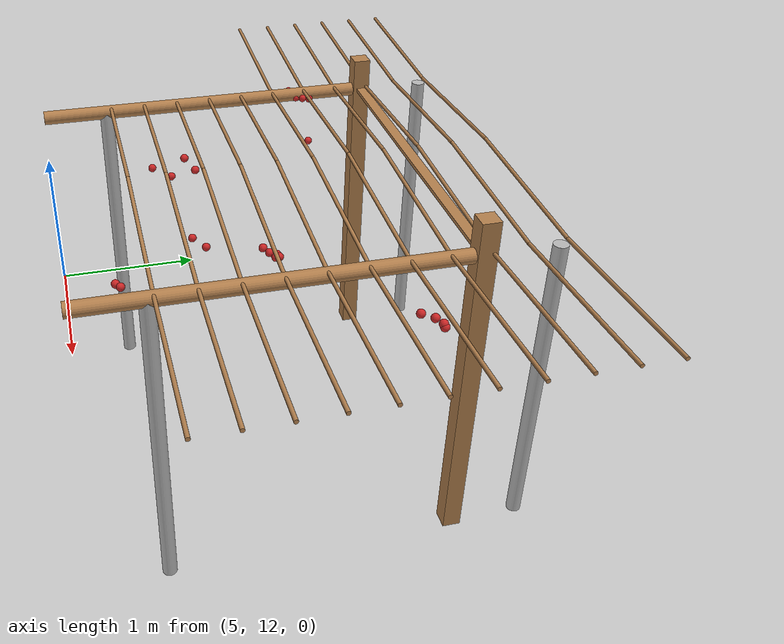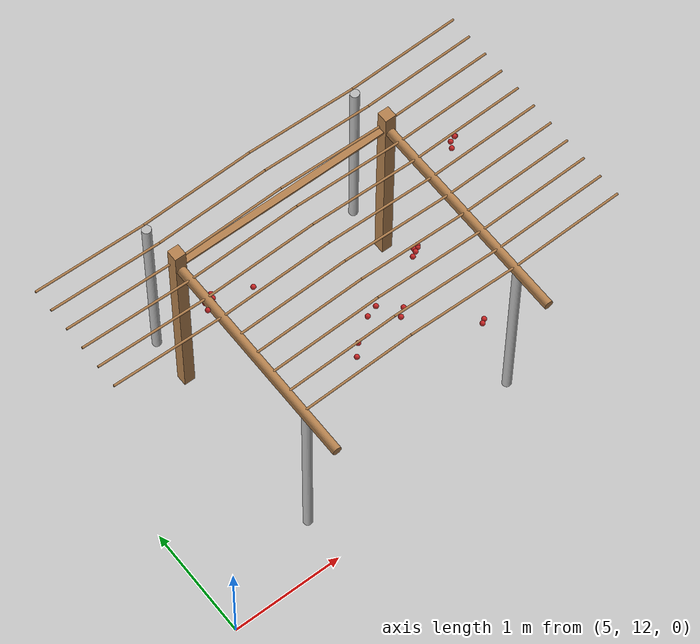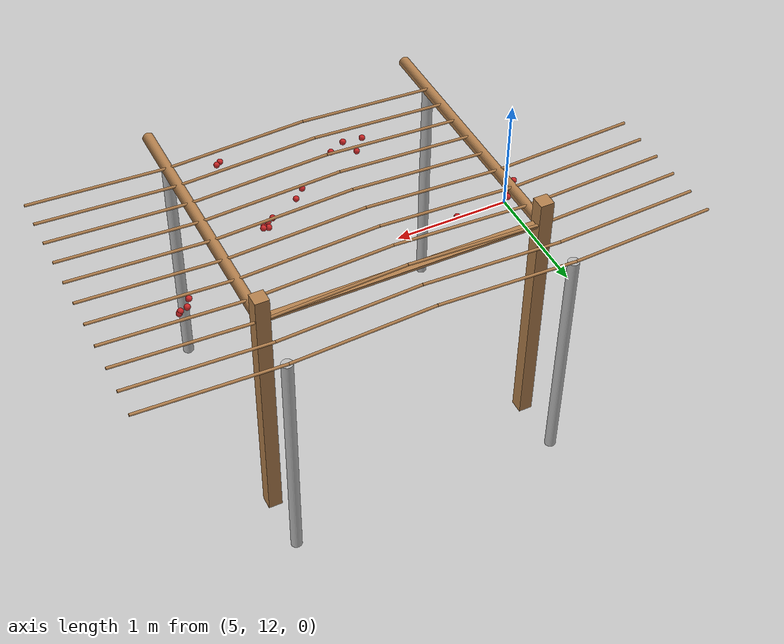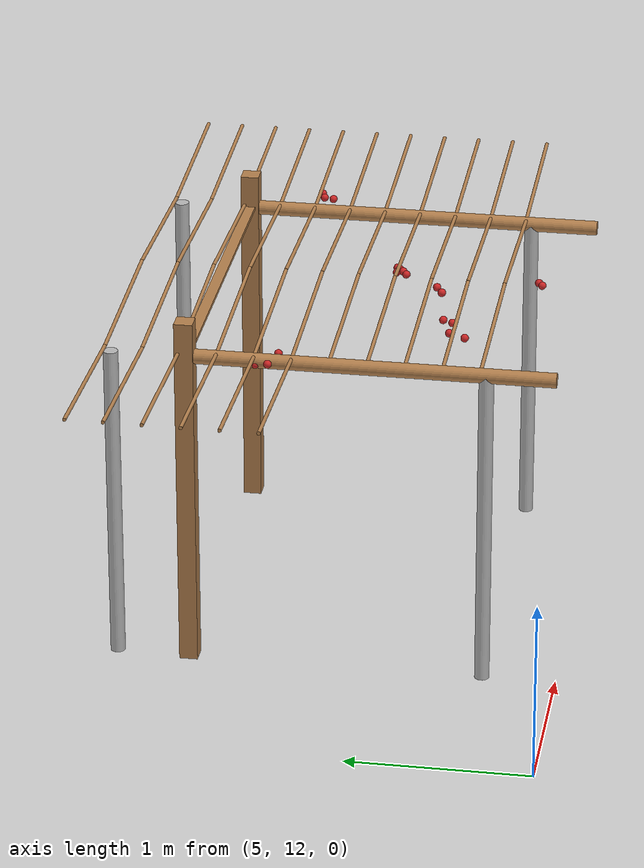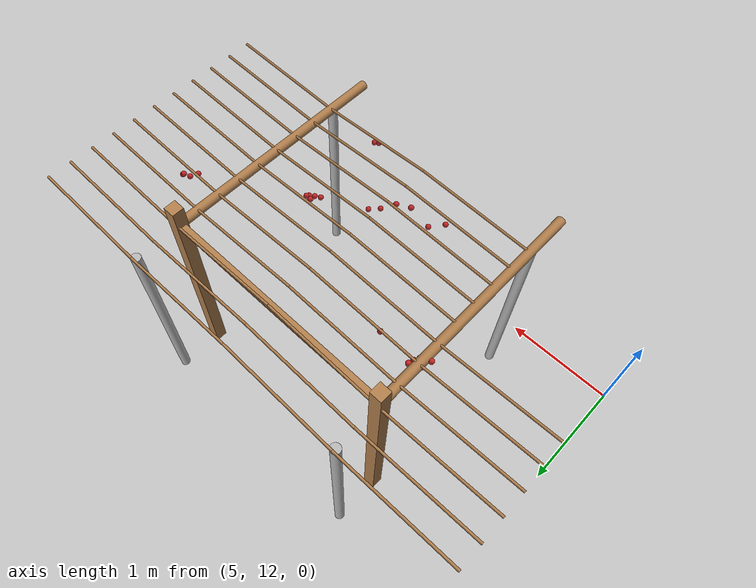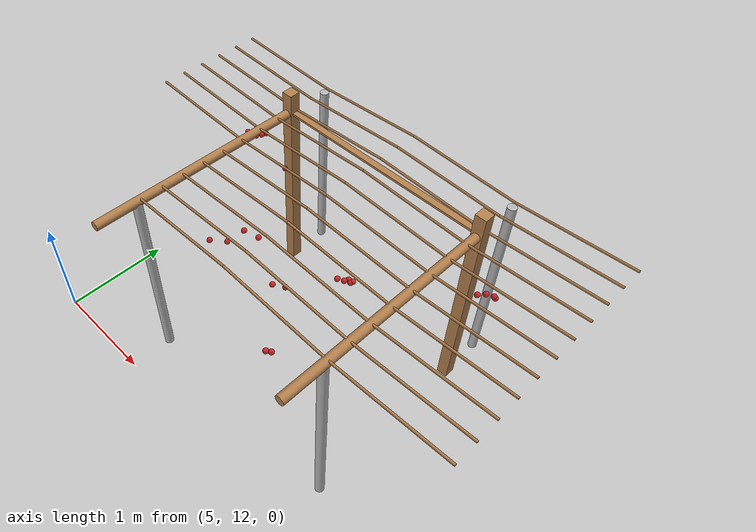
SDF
<sdf version="1.4">
 <model name="pergola">
  <include><name>post_40</name><pose>6.0 14.0 0 0 0 0</pose><uri>model://post</uri></include>
  <include><name>post_51</name><pose>8.0 14.0 0 0 0 0</pose><uri>model://post</uri></include>
  <link name="beam_40">
   <pose>7.0 14.0 1.81 0 0 0</pose>
   <collision name="collision"><geometry><box><size>2.0 0.06 0.02</size></box></geometry></collision>
   <visual name="visual">
    <geometry><box><size>2.0 0.06 0.02</size></box></geometry>
    <material><script><name>Gazebo/Wood</name></script></material>
   </visual>
   <inertial>
    <mass>5</mass>
    <inertia>
     <ixx>0.0016666666666666668</ixx>
     <ixy>0.0</ixy>
     <ixz>0.0</ixz>
     <iyy>1.6681666666666664</iyy>
     <iyz>0.0</iyz>
     <izz>1.6668333333333332</izz>
    </inertia>
   </inertial>
  </link>
  <include><name>tree_36</name><pose>6.0 12.4 0 0 0 0</pose><uri>model://tree_trunk</uri></include>
  <include><name>tree_37</name><pose>6.0 14.4 0 0 0 0</pose><uri>model://tree_trunk</uri></include>
  <include><name>tree_46</name><pose>8.0 12.4 0 0 0 0</pose><uri>model://tree_trunk</uri></include>
  <include><name>tree_47</name><pose>8.0 14.4 0 0 0 0</pose><uri>model://tree_trunk</uri></include>
  <link name="baseBranch_36">
   <pose>6.0 13.0 1.8 1.5707963267948966 0 0</pose>
   <collision name="collision">
    <geometry><cylinder><radius>0.04</radius><length>1.94</length></cylinder></geometry>
   </collision>
   <visual name="visual">
    <geometry><cylinder><radius>0.04</radius><length>1.94</length></cylinder></geometry>
    <material><script><name>Gazebo/WoodFloor</name></script></material>
   </visual>
   <inertial>
    <mass>10</mass>
    <inertia>
     <ixx>3.140333333333333</ixx>
     <ixy>0.0</ixy>
     <ixz>0.0</ixz>
     <iyy>3.140333333333333</iyy>
     <iyz>0.0</iyz>
     <izz>0.008</izz>
    </inertia>
   </inertial>
  </link>
  <link name="baseBranch_46">
   <pose>8.0 13.0 1.8 1.5707963267948966 0 0</pose>
   <collision name="collision">
    <geometry><cylinder><radius>0.04</radius><length>1.94</length></cylinder></geometry>
   </collision>
   <visual name="visual">
    <geometry><cylinder><radius>0.04</radius><length>1.94</length></cylinder></geometry>
    <material><script><name>Gazebo/WoodFloor</name></script></material>
   </visual>
   <inertial>
    <mass>10</mass>
    <inertia>
     <ixx>3.140333333333333</ixx>
     <ixy>0.0</ixy>
     <ixz>0.0</ixz>
     <iyy>3.140333333333333</iyy>
     <iyz>0.0</iyz>
     <izz>0.008</izz>
    </inertia>
   </inertial>
  </link>
  <link name="vine_535">
   <pose>5.5 13.43 1.85 0 -1.5208379310729538 0</pose>
   <collision name="collision">
    <geometry><cylinder><radius>0.01</radius><length>1.0012492197250393</length></cylinder></geometry>
   </collision>
   <visual name="visual">
    <geometry><cylinder><radius>0.01</radius><length>1.0012492197250393</length></cylinder></geometry>
    <material><script><name>Gazebo/WoodFloor</name></script></material>
   </visual>
   <inertial>
    <mass>5</mass>
    <inertia>
     <ixx>0.41783333333333345</ixx>
     <ixy>0.0</ixy>
     <ixz>0.0</ixz>
     <iyy>0.41783333333333345</iyy>
     <iyz>0.0</iyz>
     <izz>0.00025</izz>
    </inertia>
   </inertial>
  </link>
  <link name="vine_537">
   <pose>5.5 13.63 1.85 0 -1.5208379310729538 0</pose>
   <collision name="collision">
    <geometry><cylinder><radius>0.01</radius><length>1.0012492197250393</length></cylinder></geometry>
   </collision>
   <visual name="visual">
    <geometry><cylinder><radius>0.01</radius><length>1.0012492197250393</length></cylinder></geometry>
    <material><script><name>Gazebo/WoodFloor</name></script></material>
   </visual>
   <inertial>
    <mass>5</mass>
    <inertia>
     <ixx>0.41783333333333345</ixx>
     <ixy>0.0</ixy>
     <ixz>0.0</ixz>
     <iyy>0.41783333333333345</iyy>
     <iyz>0.0</iyz>
     <izz>0.00025</izz>
    </inertia>
   </inertial>
  </link>
  <link name="vine_539">
   <pose>5.5 13.83 1.85 0 -1.5208379310729538 0</pose>
   <collision name="collision">
    <geometry><cylinder><radius>0.01</radius><length>1.0012492197250393</length></cylinder></geometry>
   </collision>
   <visual name="visual">
    <geometry><cylinder><radius>0.01</radius><length>1.0012492197250393</length></cylinder></geometry>
    <material><script><name>Gazebo/WoodFloor</name></script></material>
   </visual>
   <inertial>
    <mass>5</mass>
    <inertia>
     <ixx>0.41783333333333345</ixx>
     <ixy>0.0</ixy>
     <ixz>0.0</ixz>
     <iyy>0.41783333333333345</iyy>
     <iyz>0.0</iyz>
     <izz>0.00025</izz>
    </inertia>
   </inertial>
  </link>
  <link name="vine_541">
   <pose>5.5 14.03 1.85 0 -1.5208379310729538 0</pose>
   <collision name="collision">
    <geometry><cylinder><radius>0.01</radius><length>1.0012492197250393</length></cylinder></geometry>
   </collision>
   <visual name="visual">
    <geometry><cylinder><radius>0.01</radius><length>1.0012492197250393</length></cylinder></geometry>
    <material><script><name>Gazebo/WoodFloor</name></script></material>
   </visual>
   <inertial>
    <mass>5</mass>
    <inertia>
     <ixx>0.41783333333333345</ixx>
     <ixy>0.0</ixy>
     <ixz>0.0</ixz>
     <iyy>0.41783333333333345</iyy>
     <iyz>0.0</iyz>
     <izz>0.00025</izz>
    </inertia>
   </inertial>
  </link>
  <link name="vine_543">
   <pose>5.5 14.23 1.85 0 -1.5208379310729538 0</pose>
   <collision name="collision">
    <geometry><cylinder><radius>0.01</radius><length>1.0012492197250393</length></cylinder></geometry>
   </collision>
   <visual name="visual">
    <geometry><cylinder><radius>0.01</radius><length>1.0012492197250393</length></cylinder></geometry>
    <material><script><name>Gazebo/WoodFloor</name></script></material>
   </visual>
   <inertial>
    <mass>5</mass>
    <inertia>
     <ixx>0.41783333333333345</ixx>
     <ixy>0.0</ixy>
     <ixz>0.0</ixz>
     <iyy>0.41783333333333345</iyy>
     <iyz>0.0</iyz>
     <izz>0.00025</izz>
    </inertia>
   </inertial>
  </link>
  <link name="vine_545">
   <pose>5.5 14.43 1.85 0 -1.5208379310729538 0</pose>
   <collision name="collision">
    <geometry><cylinder><radius>0.01</radius><length>1.0012492197250393</length></cylinder></geometry>
   </collision>
   <visual name="visual">
    <geometry><cylinder><radius>0.01</radius><length>1.0012492197250393</length></cylinder></geometry>
    <material><script><name>Gazebo/WoodFloor</name></script></material>
   </visual>
   <inertial>
    <mass>5</mass>
    <inertia>
     <ixx>0.41783333333333345</ixx>
     <ixy>0.0</ixy>
     <ixz>0.0</ixz>
     <iyy>0.41783333333333345</iyy>
     <iyz>0.0</iyz>
     <izz>0.00025</izz>
    </inertia>
   </inertial>
  </link>
  <link name="vine_724">
   <pose>6.5 12.43 1.85 0 1.5208379310729538 0</pose>
   <collision name="collision">
    <geometry><cylinder><radius>0.01</radius><length>1.0012492197250393</length></cylinder></geometry>
   </collision>
   <visual name="visual">
    <geometry><cylinder><radius>0.01</radius><length>1.0012492197250393</length></cylinder></geometry>
    <material><script><name>Gazebo/WoodFloor</name></script></material>
   </visual>
   <inertial>
    <mass>5</mass>
    <inertia>
     <ixx>0.41783333333333345</ixx>
     <ixy>0.0</ixy>
     <ixz>0.0</ixz>
     <iyy>0.41783333333333345</iyy>
     <iyz>0.0</iyz>
     <izz>0.00025</izz>
    </inertia>
   </inertial>
  </link>
  <link name="vine_725">
   <pose>7.5 12.43 1.85 0 -1.5208379310729538 0</pose>
   <collision name="collision">
    <geometry><cylinder><radius>0.01</radius><length>1.0012492197250393</length></cylinder></geometry>
   </collision>
   <visual name="visual">
    <geometry><cylinder><radius>0.01</radius><length>1.0012492197250393</length></cylinder></geometry>
    <material><script><name>Gazebo/WoodFloor</name></script></material>
   </visual>
   <inertial>
    <mass>5</mass>
    <inertia>
     <ixx>0.41783333333333345</ixx>
     <ixy>0.0</ixy>
     <ixz>0.0</ixz>
     <iyy>0.41783333333333345</iyy>
     <iyz>0.0</iyz>
     <izz>0.00025</izz>
    </inertia>
   </inertial>
  </link>
  <link name="vine_726">
   <pose>6.5 12.63 1.85 0 1.5208379310729538 0</pose>
   <collision name="collision">
    <geometry><cylinder><radius>0.01</radius><length>1.0012492197250393</length></cylinder></geometry>
   </collision>
   <visual name="visual">
    <geometry><cylinder><radius>0.01</radius><length>1.0012492197250393</length></cylinder></geometry>
    <material><script><name>Gazebo/WoodFloor</name></script></material>
   </visual>
   <inertial>
    <mass>5</mass>
    <inertia>
     <ixx>0.41783333333333345</ixx>
     <ixy>0.0</ixy>
     <ixz>0.0</ixz>
     <iyy>0.41783333333333345</iyy>
     <iyz>0.0</iyz>
     <izz>0.00025</izz>
    </inertia>
   </inertial>
  </link>
  <link name="vine_727">
   <pose>7.5 12.63 1.85 0 -1.5208379310729538 0</pose>
   <collision name="collision">
    <geometry><cylinder><radius>0.01</radius><length>1.0012492197250393</length></cylinder></geometry>
   </collision>
   <visual name="visual">
    <geometry><cylinder><radius>0.01</radius><length>1.0012492197250393</length></cylinder></geometry>
    <material><script><name>Gazebo/WoodFloor</name></script></material>
   </visual>
   <inertial>
    <mass>5</mass>
    <inertia>
     <ixx>0.41783333333333345</ixx>
     <ixy>0.0</ixy>
     <ixz>0.0</ixz>
     <iyy>0.41783333333333345</iyy>
     <iyz>0.0</iyz>
     <izz>0.00025</izz>
    </inertia>
   </inertial>
  </link>
  <link name="vine_728">
   <pose>6.5 12.83 1.85 0 1.5208379310729538 0</pose>
   <collision name="collision">
    <geometry><cylinder><radius>0.01</radius><length>1.0012492197250393</length></cylinder></geometry>
   </collision>
   <visual name="visual">
    <geometry><cylinder><radius>0.01</radius><length>1.0012492197250393</length></cylinder></geometry>
    <material><script><name>Gazebo/WoodFloor</name></script></material>
   </visual>
   <inertial>
    <mass>5</mass>
    <inertia>
     <ixx>0.41783333333333345</ixx>
     <ixy>0.0</ixy>
     <ixz>0.0</ixz>
     <iyy>0.41783333333333345</iyy>
     <iyz>0.0</iyz>
     <izz>0.00025</izz>
    </inertia>
   </inertial>
  </link>
  <link name="vine_729">
   <pose>7.5 12.83 1.85 0 -1.5208379310729538 0</pose>
   <collision name="collision">
    <geometry><cylinder><radius>0.01</radius><length>1.0012492197250393</length></cylinder></geometry>
   </collision>
   <visual name="visual">
    <geometry><cylinder><radius>0.01</radius><length>1.0012492197250393</length></cylinder></geometry>
    <material><script><name>Gazebo/WoodFloor</name></script></material>
   </visual>
   <inertial>
    <mass>5</mass>
    <inertia>
     <ixx>0.41783333333333345</ixx>
     <ixy>0.0</ixy>
     <ixz>0.0</ixz>
     <iyy>0.41783333333333345</iyy>
     <iyz>0.0</iyz>
     <izz>0.00025</izz>
    </inertia>
   </inertial>
  </link>
  <link name="vine_730">
   <pose>6.5 13.03 1.85 0 1.5208379310729538 0</pose>
   <collision name="collision">
    <geometry><cylinder><radius>0.01</radius><length>1.0012492197250393</length></cylinder></geometry>
   </collision>
   <visual name="visual">
    <geometry><cylinder><radius>0.01</radius><length>1.0012492197250393</length></cylinder></geometry>
    <material><script><name>Gazebo/WoodFloor</name></script></material>
   </visual>
   <inertial>
    <mass>5</mass>
    <inertia>
     <ixx>0.41783333333333345</ixx>
     <ixy>0.0</ixy>
     <ixz>0.0</ixz>
     <iyy>0.41783333333333345</iyy>
     <iyz>0.0</iyz>
     <izz>0.00025</izz>
    </inertia>
   </inertial>
  </link>
  <link name="vine_731">
   <pose>7.5 13.03 1.85 0 -1.5208379310729538 0</pose>
   <collision name="collision">
    <geometry><cylinder><radius>0.01</radius><length>1.0012492197250393</length></cylinder></geometry>
   </collision>
   <visual name="visual">
    <geometry><cylinder><radius>0.01</radius><length>1.0012492197250393</length></cylinder></geometry>
    <material><script><name>Gazebo/WoodFloor</name></script></material>
   </visual>
   <inertial>
    <mass>5</mass>
    <inertia>
     <ixx>0.41783333333333345</ixx>
     <ixy>0.0</ixy>
     <ixz>0.0</ixz>
     <iyy>0.41783333333333345</iyy>
     <iyz>0.0</iyz>
     <izz>0.00025</izz>
    </inertia>
   </inertial>
  </link>
  <link name="vine_732">
   <pose>6.5 13.23 1.85 0 1.5208379310729538 0</pose>
   <collision name="collision">
    <geometry><cylinder><radius>0.01</radius><length>1.0012492197250393</length></cylinder></geometry>
   </collision>
   <visual name="visual">
    <geometry><cylinder><radius>0.01</radius><length>1.0012492197250393</length></cylinder></geometry>
    <material><script><name>Gazebo/WoodFloor</name></script></material>
   </visual>
   <inertial>
    <mass>5</mass>
    <inertia>
     <ixx>0.41783333333333345</ixx>
     <ixy>0.0</ixy>
     <ixz>0.0</ixz>
     <iyy>0.41783333333333345</iyy>
     <iyz>0.0</iyz>
     <izz>0.00025</izz>
    </inertia>
   </inertial>
  </link>
  <link name="vine_733">
   <pose>7.5 13.23 1.85 0 -1.5208379310729538 0</pose>
   <collision name="collision">
    <geometry><cylinder><radius>0.01</radius><length>1.0012492197250393</length></cylinder></geometry>
   </collision>
   <visual name="visual">
    <geometry><cylinder><radius>0.01</radius><length>1.0012492197250393</length></cylinder></geometry>
    <material><script><name>Gazebo/WoodFloor</name></script></material>
   </visual>
   <inertial>
    <mass>5</mass>
    <inertia>
     <ixx>0.41783333333333345</ixx>
     <ixy>0.0</ixy>
     <ixz>0.0</ixz>
     <iyy>0.41783333333333345</iyy>
     <iyz>0.0</iyz>
     <izz>0.00025</izz>
    </inertia>
   </inertial>
  </link>
  <link name="vine_734">
   <pose>6.5 13.43 1.85 0 1.5208379310729538 0</pose>
   <collision name="collision">
    <geometry><cylinder><radius>0.01</radius><length>1.0012492197250393</length></cylinder></geometry>
   </collision>
   <visual name="visual">
    <geometry><cylinder><radius>0.01</radius><length>1.0012492197250393</length></cylinder></geometry>
    <material><script><name>Gazebo/WoodFloor</name></script></material>
   </visual>
   <inertial>
    <mass>5</mass>
    <inertia>
     <ixx>0.41783333333333345</ixx>
     <ixy>0.0</ixy>
     <ixz>0.0</ixz>
     <iyy>0.41783333333333345</iyy>
     <iyz>0.0</iyz>
     <izz>0.00025</izz>
    </inertia>
   </inertial>
  </link>
  <link name="vine_735">
   <pose>7.5 13.43 1.85 0 -1.5208379310729538 0</pose>
   <collision name="collision">
    <geometry><cylinder><radius>0.01</radius><length>1.0012492197250393</length></cylinder></geometry>
   </collision>
   <visual name="visual">
    <geometry><cylinder><radius>0.01</radius><length>1.0012492197250393</length></cylinder></geometry>
    <material><script><name>Gazebo/WoodFloor</name></script></material>
   </visual>
   <inertial>
    <mass>5</mass>
    <inertia>
     <ixx>0.41783333333333345</ixx>
     <ixy>0.0</ixy>
     <ixz>0.0</ixz>
     <iyy>0.41783333333333345</iyy>
     <iyz>0.0</iyz>
     <izz>0.00025</izz>
    </inertia>
   </inertial>
  </link>
  <link name="vine_736">
   <pose>6.5 13.63 1.85 0 1.5208379310729538 0</pose>
   <collision name="collision">
    <geometry><cylinder><radius>0.01</radius><length>1.0012492197250393</length></cylinder></geometry>
   </collision>
   <visual name="visual">
    <geometry><cylinder><radius>0.01</radius><length>1.0012492197250393</length></cylinder></geometry>
    <material><script><name>Gazebo/WoodFloor</name></script></material>
   </visual>
   <inertial>
    <mass>5</mass>
    <inertia>
     <ixx>0.41783333333333345</ixx>
     <ixy>0.0</ixy>
     <ixz>0.0</ixz>
     <iyy>0.41783333333333345</iyy>
     <iyz>0.0</iyz>
     <izz>0.00025</izz>
    </inertia>
   </inertial>
  </link>
  <link name="vine_737">
   <pose>7.5 13.63 1.85 0 -1.5208379310729538 0</pose>
   <collision name="collision">
    <geometry><cylinder><radius>0.01</radius><length>1.0012492197250393</length></cylinder></geometry>
   </collision>
   <visual name="visual">
    <geometry><cylinder><radius>0.01</radius><length>1.0012492197250393</length></cylinder></geometry>
    <material><script><name>Gazebo/WoodFloor</name></script></material>
   </visual>
   <inertial>
    <mass>5</mass>
    <inertia>
     <ixx>0.41783333333333345</ixx>
     <ixy>0.0</ixy>
     <ixz>0.0</ixz>
     <iyy>0.41783333333333345</iyy>
     <iyz>0.0</iyz>
     <izz>0.00025</izz>
    </inertia>
   </inertial>
  </link>
  <link name="vine_738">
   <pose>6.5 13.83 1.85 0 1.5208379310729538 0</pose>
   <collision name="collision">
    <geometry><cylinder><radius>0.01</radius><length>1.0012492197250393</length></cylinder></geometry>
   </collision>
   <visual name="visual">
    <geometry><cylinder><radius>0.01</radius><length>1.0012492197250393</length></cylinder></geometry>
    <material><script><name>Gazebo/WoodFloor</name></script></material>
   </visual>
   <inertial>
    <mass>5</mass>
    <inertia>
     <ixx>0.41783333333333345</ixx>
     <ixy>0.0</ixy>
     <ixz>0.0</ixz>
     <iyy>0.41783333333333345</iyy>
     <iyz>0.0</iyz>
     <izz>0.00025</izz>
    </inertia>
   </inertial>
  </link>
  <link name="vine_739">
   <pose>7.5 13.83 1.85 0 -1.5208379310729538 0</pose>
   <collision name="collision">
    <geometry><cylinder><radius>0.01</radius><length>1.0012492197250393</length></cylinder></geometry>
   </collision>
   <visual name="visual">
    <geometry><cylinder><radius>0.01</radius><length>1.0012492197250393</length></cylinder></geometry>
    <material><script><name>Gazebo/WoodFloor</name></script></material>
   </visual>
   <inertial>
    <mass>5</mass>
    <inertia>
     <ixx>0.41783333333333345</ixx>
     <ixy>0.0</ixy>
     <ixz>0.0</ixz>
     <iyy>0.41783333333333345</iyy>
     <iyz>0.0</iyz>
     <izz>0.00025</izz>
    </inertia>
   </inertial>
  </link>
  <link name="vine_740">
   <pose>6.5 14.03 1.85 0 1.5208379310729538 0</pose>
   <collision name="collision">
    <geometry><cylinder><radius>0.01</radius><length>1.0012492197250393</length></cylinder></geometry>
   </collision>
   <visual name="visual">
    <geometry><cylinder><radius>0.01</radius><length>1.0012492197250393</length></cylinder></geometry>
    <material><script><name>Gazebo/WoodFloor</name></script></material>
   </visual>
   <inertial>
    <mass>5</mass>
    <inertia>
     <ixx>0.41783333333333345</ixx>
     <ixy>0.0</ixy>
     <ixz>0.0</ixz>
     <iyy>0.41783333333333345</iyy>
     <iyz>0.0</iyz>
     <izz>0.00025</izz>
    </inertia>
   </inertial>
  </link>
  <link name="vine_741">
   <pose>7.5 14.03 1.85 0 -1.5208379310729538 0</pose>
   <collision name="collision">
    <geometry><cylinder><radius>0.01</radius><length>1.0012492197250393</length></cylinder></geometry>
   </collision>
   <visual name="visual">
    <geometry><cylinder><radius>0.01</radius><length>1.0012492197250393</length></cylinder></geometry>
    <material><script><name>Gazebo/WoodFloor</name></script></material>
   </visual>
   <inertial>
    <mass>5</mass>
    <inertia>
     <ixx>0.41783333333333345</ixx>
     <ixy>0.0</ixy>
     <ixz>0.0</ixz>
     <iyy>0.41783333333333345</iyy>
     <iyz>0.0</iyz>
     <izz>0.00025</izz>
    </inertia>
   </inertial>
  </link>
  <link name="vine_742">
   <pose>6.5 14.23 1.85 0 1.5208379310729538 0</pose>
   <collision name="collision">
    <geometry><cylinder><radius>0.01</radius><length>1.0012492197250393</length></cylinder></geometry>
   </collision>
   <visual name="visual">
    <geometry><cylinder><radius>0.01</radius><length>1.0012492197250393</length></cylinder></geometry>
    <material><script><name>Gazebo/WoodFloor</name></script></material>
   </visual>
   <inertial>
    <mass>5</mass>
    <inertia>
     <ixx>0.41783333333333345</ixx>
     <ixy>0.0</ixy>
     <ixz>0.0</ixz>
     <iyy>0.41783333333333345</iyy>
     <iyz>0.0</iyz>
     <izz>0.00025</izz>
    </inertia>
   </inertial>
  </link>
  <link name="vine_743">
   <pose>7.5 14.23 1.85 0 -1.5208379310729538 0</pose>
   <collision name="collision">
    <geometry><cylinder><radius>0.01</radius><length>1.0012492197250393</length></cylinder></geometry>
   </collision>
   <visual name="visual">
    <geometry><cylinder><radius>0.01</radius><length>1.0012492197250393</length></cylinder></geometry>
    <material><script><name>Gazebo/WoodFloor</name></script></material>
   </visual>
   <inertial>
    <mass>5</mass>
    <inertia>
     <ixx>0.41783333333333345</ixx>
     <ixy>0.0</ixy>
     <ixz>0.0</ixz>
     <iyy>0.41783333333333345</iyy>
     <iyz>0.0</iyz>
     <izz>0.00025</izz>
    </inertia>
   </inertial>
  </link>
  <link name="vine_744">
   <pose>6.5 14.43 1.85 0 1.5208379310729538 0</pose>
   <collision name="collision">
    <geometry><cylinder><radius>0.01</radius><length>1.0012492197250393</length></cylinder></geometry>
   </collision>
   <visual name="visual">
    <geometry><cylinder><radius>0.01</radius><length>1.0012492197250393</length></cylinder></geometry>
    <material><script><name>Gazebo/WoodFloor</name></script></material>
   </visual>
   <inertial>
    <mass>5</mass>
    <inertia>
     <ixx>0.41783333333333345</ixx>
     <ixy>0.0</ixy>
     <ixz>0.0</ixz>
     <iyy>0.41783333333333345</iyy>
     <iyz>0.0</iyz>
     <izz>0.00025</izz>
    </inertia>
   </inertial>
  </link>
  <link name="vine_745">
   <pose>7.5 14.43 1.85 0 -1.5208379310729538 0</pose>
   <collision name="collision">
    <geometry><cylinder><radius>0.01</radius><length>1.0012492197250393</length></cylinder></geometry>
   </collision>
   <visual name="visual">
    <geometry><cylinder><radius>0.01</radius><length>1.0012492197250393</length></cylinder></geometry>
    <material><script><name>Gazebo/WoodFloor</name></script></material>
   </visual>
   <inertial>
    <mass>5</mass>
    <inertia>
     <ixx>0.41783333333333345</ixx>
     <ixy>0.0</ixy>
     <ixz>0.0</ixz>
     <iyy>0.41783333333333345</iyy>
     <iyz>0.0</iyz>
     <izz>0.00025</izz>
    </inertia>
   </inertial>
  </link>
  <link name="vine_924">
   <pose>8.5 12.43 1.85 0 1.5208379310729538 0</pose>
   <collision name="collision">
    <geometry><cylinder><radius>0.01</radius><length>1.0012492197250393</length></cylinder></geometry>
   </collision>
   <visual name="visual">
    <geometry><cylinder><radius>0.01</radius><length>1.0012492197250393</length></cylinder></geometry>
    <material><script><name>Gazebo/WoodFloor</name></script></material>
   </visual>
   <inertial>
    <mass>5</mass>
    <inertia>
     <ixx>0.41783333333333345</ixx>
     <ixy>0.0</ixy>
     <ixz>0.0</ixz>
     <iyy>0.41783333333333345</iyy>
     <iyz>0.0</iyz>
     <izz>0.00025</izz>
    </inertia>
   </inertial>
  </link>
  <link name="vine_926">
   <pose>8.5 12.63 1.85 0 1.5208379310729538 0</pose>
   <collision name="collision">
    <geometry><cylinder><radius>0.01</radius><length>1.0012492197250393</length></cylinder></geometry>
   </collision>
   <visual name="visual">
    <geometry><cylinder><radius>0.01</radius><length>1.0012492197250393</length></cylinder></geometry>
    <material><script><name>Gazebo/WoodFloor</name></script></material>
   </visual>
   <inertial>
    <mass>5</mass>
    <inertia>
     <ixx>0.41783333333333345</ixx>
     <ixy>0.0</ixy>
     <ixz>0.0</ixz>
     <iyy>0.41783333333333345</iyy>
     <iyz>0.0</iyz>
     <izz>0.00025</izz>
    </inertia>
   </inertial>
  </link>
  <link name="vine_928">
   <pose>8.5 12.83 1.85 0 1.5208379310729538 0</pose>
   <collision name="collision">
    <geometry><cylinder><radius>0.01</radius><length>1.0012492197250393</length></cylinder></geometry>
   </collision>
   <visual name="visual">
    <geometry><cylinder><radius>0.01</radius><length>1.0012492197250393</length></cylinder></geometry>
    <material><script><name>Gazebo/WoodFloor</name></script></material>
   </visual>
   <inertial>
    <mass>5</mass>
    <inertia>
     <ixx>0.41783333333333345</ixx>
     <ixy>0.0</ixy>
     <ixz>0.0</ixz>
     <iyy>0.41783333333333345</iyy>
     <iyz>0.0</iyz>
     <izz>0.00025</izz>
    </inertia>
   </inertial>
  </link>
  <link name="vine_930">
   <pose>8.5 13.03 1.85 0 1.5208379310729538 0</pose>
   <collision name="collision">
    <geometry><cylinder><radius>0.01</radius><length>1.0012492197250393</length></cylinder></geometry>
   </collision>
   <visual name="visual">
    <geometry><cylinder><radius>0.01</radius><length>1.0012492197250393</length></cylinder></geometry>
    <material><script><name>Gazebo/WoodFloor</name></script></material>
   </visual>
   <inertial>
    <mass>5</mass>
    <inertia>
     <ixx>0.41783333333333345</ixx>
     <ixy>0.0</ixy>
     <ixz>0.0</ixz>
     <iyy>0.41783333333333345</iyy>
     <iyz>0.0</iyz>
     <izz>0.00025</izz>
    </inertia>
   </inertial>
  </link>
  <link name="vine_932">
   <pose>8.5 13.23 1.85 0 1.5208379310729538 0</pose>
   <collision name="collision">
    <geometry><cylinder><radius>0.01</radius><length>1.0012492197250393</length></cylinder></geometry>
   </collision>
   <visual name="visual">
    <geometry><cylinder><radius>0.01</radius><length>1.0012492197250393</length></cylinder></geometry>
    <material><script><name>Gazebo/WoodFloor</name></script></material>
   </visual>
   <inertial>
    <mass>5</mass>
    <inertia>
     <ixx>0.41783333333333345</ixx>
     <ixy>0.0</ixy>
     <ixz>0.0</ixz>
     <iyy>0.41783333333333345</iyy>
     <iyz>0.0</iyz>
     <izz>0.00025</izz>
    </inertia>
   </inertial>
  </link>
  <link name="vine_934">
   <pose>8.5 13.43 1.85 0 1.5208379310729538 0</pose>
   <collision name="collision">
    <geometry><cylinder><radius>0.01</radius><length>1.0012492197250393</length></cylinder></geometry>
   </collision>
   <visual name="visual">
    <geometry><cylinder><radius>0.01</radius><length>1.0012492197250393</length></cylinder></geometry>
    <material><script><name>Gazebo/WoodFloor</name></script></material>
   </visual>
   <inertial>
    <mass>5</mass>
    <inertia>
     <ixx>0.41783333333333345</ixx>
     <ixy>0.0</ixy>
     <ixz>0.0</ixz>
     <iyy>0.41783333333333345</iyy>
     <iyz>0.0</iyz>
     <izz>0.00025</izz>
    </inertia>
   </inertial>
  </link>
  <link name="vine_936">
   <pose>8.5 13.63 1.85 0 1.5208379310729538 0</pose>
   <collision name="collision">
    <geometry><cylinder><radius>0.01</radius><length>1.0012492197250393</length></cylinder></geometry>
   </collision>
   <visual name="visual">
    <geometry><cylinder><radius>0.01</radius><length>1.0012492197250393</length></cylinder></geometry>
    <material><script><name>Gazebo/WoodFloor</name></script></material>
   </visual>
   <inertial>
    <mass>5</mass>
    <inertia>
     <ixx>0.41783333333333345</ixx>
     <ixy>0.0</ixy>
     <ixz>0.0</ixz>
     <iyy>0.41783333333333345</iyy>
     <iyz>0.0</iyz>
     <izz>0.00025</izz>
    </inertia>
   </inertial>
  </link>
  <link name="vine_938">
   <pose>8.5 13.83 1.85 0 1.5208379310729538 0</pose>
   <collision name="collision">
    <geometry><cylinder><radius>0.01</radius><length>1.0012492197250393</length></cylinder></geometry>
   </collision>
   <visual name="visual">
    <geometry><cylinder><radius>0.01</radius><length>1.0012492197250393</length></cylinder></geometry>
    <material><script><name>Gazebo/WoodFloor</name></script></material>
   </visual>
   <inertial>
    <mass>5</mass>
    <inertia>
     <ixx>0.41783333333333345</ixx>
     <ixy>0.0</ixy>
     <ixz>0.0</ixz>
     <iyy>0.41783333333333345</iyy>
     <iyz>0.0</iyz>
     <izz>0.00025</izz>
    </inertia>
   </inertial>
  </link>
  <link name="vine_940">
   <pose>8.5 14.03 1.85 0 1.5208379310729538 0</pose>
   <collision name="collision">
    <geometry><cylinder><radius>0.01</radius><length>1.0012492197250393</length></cylinder></geometry>
   </collision>
   <visual name="visual">
    <geometry><cylinder><radius>0.01</radius><length>1.0012492197250393</length></cylinder></geometry>
    <material><script><name>Gazebo/WoodFloor</name></script></material>
   </visual>
   <inertial>
    <mass>5</mass>
    <inertia>
     <ixx>0.41783333333333345</ixx>
     <ixy>0.0</ixy>
     <ixz>0.0</ixz>
     <iyy>0.41783333333333345</iyy>
     <iyz>0.0</iyz>
     <izz>0.00025</izz>
    </inertia>
   </inertial>
  </link>
  <link name="vine_942">
   <pose>8.5 14.23 1.85 0 1.5208379310729538 0</pose>
   <collision name="collision">
    <geometry><cylinder><radius>0.01</radius><length>1.0012492197250393</length></cylinder></geometry>
   </collision>
   <visual name="visual">
    <geometry><cylinder><radius>0.01</radius><length>1.0012492197250393</length></cylinder></geometry>
    <material><script><name>Gazebo/WoodFloor</name></script></material>
   </visual>
   <inertial>
    <mass>5</mass>
    <inertia>
     <ixx>0.41783333333333345</ixx>
     <ixy>0.0</ixy>
     <ixz>0.0</ixz>
     <iyy>0.41783333333333345</iyy>
     <iyz>0.0</iyz>
     <izz>0.00025</izz>
    </inertia>
   </inertial>
  </link>
  <link name="vine_944">
   <pose>8.5 14.43 1.85 0 1.5208379310729538 0</pose>
   <collision name="collision">
    <geometry><cylinder><radius>0.01</radius><length>1.0012492197250393</length></cylinder></geometry>
   </collision>
   <visual name="visual">
    <geometry><cylinder><radius>0.01</radius><length>1.0012492197250393</length></cylinder></geometry>
    <material><script><name>Gazebo/WoodFloor</name></script></material>
   </visual>
   <inertial>
    <mass>5</mass>
    <inertia>
     <ixx>0.41783333333333345</ixx>
     <ixy>0.0</ixy>
     <ixz>0.0</ixz>
     <iyy>0.41783333333333345</iyy>
     <iyz>0.0</iyz>
     <izz>0.00025</izz>
    </inertia>
   </inertial>
  </link>
  <link name="fruit_2">
   <pose>6.843054526153685 12.75126112444664 1.8725511987556345 0 0 0</pose>
   <collision name="fruit_collision_2"><geometry><sphere><radius>0.022</radius></sphere></geometry></collision>
   <visual name="visual">
    <geometry><sphere><radius>0.022</radius></sphere></geometry>
    <material><script><name>Gazebo/Red</name></script></material>
   </visual>
   <inertial>
    <mass>0.05</mass>
    <inertia>
     <ixx>9.679999999999999e-06</ixx>
     <ixy>0.0</ixy>
     <ixz>0.0</ixz>
     <iyy>9.679999999999999e-06</iyy>
     <iyz>0.0</iyz>
     <izz>9.679999999999999e-06</izz>
    </inertia>
   </inertial>
   <sensor name="fruit_contact_2" type="contact">
    <contact><collision>fruit_collision_2</collision></contact>
   </sensor>
  </link>
  <link name="fruit_28">
   <pose>7.150270286188642 12.730830066657141 1.5534219136139467 0 0 0</pose>
   <collision name="fruit_collision_28"><geometry><sphere><radius>0.022</radius></sphere></geometry></collision>
   <visual name="visual">
    <geometry><sphere><radius>0.022</radius></sphere></geometry>
    <material><script><name>Gazebo/Red</name></script></material>
   </visual>
   <inertial>
    <mass>0.05</mass>
    <inertia>
     <ixx>9.679999999999999e-06</ixx>
     <ixy>0.0</ixy>
     <ixz>0.0</ixz>
     <iyy>9.679999999999999e-06</iyy>
     <iyz>0.0</iyz>
     <izz>9.679999999999999e-06</izz>
    </inertia>
   </inertial>
   <sensor name="fruit_contact_28" type="contact">
    <contact><collision>fruit_collision_28</collision></contact>
   </sensor>
  </link>
  <link name="fruit_84">
   <pose>6.386166499749576 13.56751560245412 1.6642836169759938 0 0 0</pose>
   <collision name="fruit_collision_84"><geometry><sphere><radius>0.022</radius></sphere></geometry></collision>
   <visual name="visual">
    <geometry><sphere><radius>0.022</radius></sphere></geometry>
    <material><script><name>Gazebo/Red</name></script></material>
   </visual>
   <inertial>
    <mass>0.05</mass>
    <inertia>
     <ixx>9.679999999999999e-06</ixx>
     <ixy>0.0</ixy>
     <ixz>0.0</ixz>
     <iyy>9.679999999999999e-06</iyy>
     <iyz>0.0</iyz>
     <izz>9.679999999999999e-06</izz>
    </inertia>
   </inertial>
   <sensor name="fruit_contact_84" type="contact">
    <contact><collision>fruit_collision_84</collision></contact>
   </sensor>
  </link>
  <link name="fruit_94">
   <pose>5.951989394625852 13.550558124468605 1.8050308699682298 0 0 0</pose>
   <collision name="fruit_collision_94"><geometry><sphere><radius>0.022</radius></sphere></geometry></collision>
   <visual name="visual">
    <geometry><sphere><radius>0.022</radius></sphere></geometry>
    <material><script><name>Gazebo/Red</name></script></material>
   </visual>
   <inertial>
    <mass>0.05</mass>
    <inertia>
     <ixx>9.679999999999999e-06</ixx>
     <ixy>0.0</ixy>
     <ixz>0.0</ixz>
     <iyy>9.679999999999999e-06</iyy>
     <iyz>0.0</iyz>
     <izz>9.679999999999999e-06</izz>
    </inertia>
   </inertial>
   <sensor name="fruit_contact_94" type="contact">
    <contact><collision>fruit_collision_94</collision></contact>
   </sensor>
  </link>
  <link name="fruit_169">
   <pose>6.621087984354698 12.595421303868005 1.715970368674989 0 0 0</pose>
   <collision name="fruit_collision_169"><geometry><sphere><radius>0.022</radius></sphere></geometry></collision>
   <visual name="visual">
    <geometry><sphere><radius>0.022</radius></sphere></geometry>
    <material><script><name>Gazebo/Red</name></script></material>
   </visual>
   <inertial>
    <mass>0.05</mass>
    <inertia>
     <ixx>9.679999999999999e-06</ixx>
     <ixy>0.0</ixy>
     <ixz>0.0</ixz>
     <iyy>9.679999999999999e-06</iyy>
     <iyz>0.0</iyz>
     <izz>9.679999999999999e-06</izz>
    </inertia>
   </inertial>
   <sensor name="fruit_contact_169" type="contact">
    <contact><collision>fruit_collision_169</collision></contact>
   </sensor>
  </link>
  <link name="fruit_215">
   <pose>8.308583688408545 13.576863527340365 1.7436181281625 0 0 0</pose>
   <collision name="fruit_collision_215"><geometry><sphere><radius>0.022</radius></sphere></geometry></collision>
   <visual name="visual">
    <geometry><sphere><radius>0.022</radius></sphere></geometry>
    <material><script><name>Gazebo/Red</name></script></material>
   </visual>
   <inertial>
    <mass>0.05</mass>
    <inertia>
     <ixx>9.679999999999999e-06</ixx>
     <ixy>0.0</ixy>
     <ixz>0.0</ixz>
     <iyy>9.679999999999999e-06</iyy>
     <iyz>0.0</iyz>
     <izz>9.679999999999999e-06</izz>
    </inertia>
   </inertial>
   <sensor name="fruit_contact_215" type="contact">
    <contact><collision>fruit_collision_215</collision></contact>
   </sensor>
  </link>
  <link name="fruit_219">
   <pose>7.503195021566354 13.038215207772335 1.6663244659220293 0 0 0</pose>
   <collision name="fruit_collision_219"><geometry><sphere><radius>0.022</radius></sphere></geometry></collision>
   <visual name="visual">
    <geometry><sphere><radius>0.022</radius></sphere></geometry>
    <material><script><name>Gazebo/Red</name></script></material>
   </visual>
   <inertial>
    <mass>0.05</mass>
    <inertia>
     <ixx>9.679999999999999e-06</ixx>
     <ixy>0.0</ixy>
     <ixz>0.0</ixz>
     <iyy>9.679999999999999e-06</iyy>
     <iyz>0.0</iyz>
     <izz>9.679999999999999e-06</izz>
    </inertia>
   </inertial>
   <sensor name="fruit_contact_219" type="contact">
    <contact><collision>fruit_collision_219</collision></contact>
   </sensor>
  </link>
  <link name="fruit_364">
   <pose>7.556795420824512 13.098876651872086 1.6518606639277673 0 0 0</pose>
   <collision name="fruit_collision_364"><geometry><sphere><radius>0.022</radius></sphere></geometry></collision>
   <visual name="visual">
    <geometry><sphere><radius>0.022</radius></sphere></geometry>
    <material><script><name>Gazebo/Red</name></script></material>
   </visual>
   <inertial>
    <mass>0.05</mass>
    <inertia>
     <ixx>9.679999999999999e-06</ixx>
     <ixy>0.0</ixy>
     <ixz>0.0</ixz>
     <iyy>9.679999999999999e-06</iyy>
     <iyz>0.0</iyz>
     <izz>9.679999999999999e-06</izz>
    </inertia>
   </inertial>
   <sensor name="fruit_contact_364" type="contact">
    <contact><collision>fruit_collision_364</collision></contact>
   </sensor>
  </link>
  <link name="fruit_461">
   <pose>6.047160860138638 13.61929570672889 1.7876916530518623 0 0 0</pose>
   <collision name="fruit_collision_461"><geometry><sphere><radius>0.022</radius></sphere></geometry></collision>
   <visual name="visual">
    <geometry><sphere><radius>0.022</radius></sphere></geometry>
    <material><script><name>Gazebo/Red</name></script></material>
   </visual>
   <inertial>
    <mass>0.05</mass>
    <inertia>
     <ixx>9.679999999999999e-06</ixx>
     <ixy>0.0</ixy>
     <ixz>0.0</ixz>
     <iyy>9.679999999999999e-06</iyy>
     <iyz>0.0</iyz>
     <izz>9.679999999999999e-06</izz>
    </inertia>
   </inertial>
   <sensor name="fruit_contact_461" type="contact">
    <contact><collision>fruit_collision_461</collision></contact>
   </sensor>
  </link>
  <link name="fruit_529">
   <pose>7.596206262356069 13.100953495252163 1.6626776651335597 0 0 0</pose>
   <collision name="fruit_collision_529"><geometry><sphere><radius>0.022</radius></sphere></geometry></collision>
   <visual name="visual">
    <geometry><sphere><radius>0.022</radius></sphere></geometry>
    <material><script><name>Gazebo/Red</name></script></material>
   </visual>
   <inertial>
    <mass>0.05</mass>
    <inertia>
     <ixx>9.679999999999999e-06</ixx>
     <ixy>0.0</ixy>
     <ixz>0.0</ixz>
     <iyy>9.679999999999999e-06</iyy>
     <iyz>0.0</iyz>
     <izz>9.679999999999999e-06</izz>
    </inertia>
   </inertial>
   <sensor name="fruit_contact_529" type="contact">
    <contact><collision>fruit_collision_529</collision></contact>
   </sensor>
  </link>
  <link name="fruit_556">
   <pose>8.342308015454119 13.633118114629225 1.7345380532221955 0 0 0</pose>
   <collision name="fruit_collision_556"><geometry><sphere><radius>0.022</radius></sphere></geometry></collision>
   <visual name="visual">
    <geometry><sphere><radius>0.022</radius></sphere></geometry>
    <material><script><name>Gazebo/Red</name></script></material>
   </visual>
   <inertial>
    <mass>0.05</mass>
    <inertia>
     <ixx>9.679999999999999e-06</ixx>
     <ixy>0.0</ixy>
     <ixz>0.0</ixz>
     <iyy>9.679999999999999e-06</iyy>
     <iyz>0.0</iyz>
     <izz>9.679999999999999e-06</izz>
    </inertia>
   </inertial>
   <sensor name="fruit_contact_556" type="contact">
    <contact><collision>fruit_collision_556</collision></contact>
   </sensor>
  </link>
  <link name="fruit_576">
   <pose>7.61236293495129 12.308380176133154 1.6163927333769743 0 0 0</pose>
   <collision name="fruit_collision_576"><geometry><sphere><radius>0.022</radius></sphere></geometry></collision>
   <visual name="visual">
    <geometry><sphere><radius>0.022</radius></sphere></geometry>
    <material><script><name>Gazebo/Red</name></script></material>
   </visual>
   <inertial>
    <mass>0.05</mass>
    <inertia>
     <ixx>9.679999999999999e-06</ixx>
     <ixy>0.0</ixy>
     <ixz>0.0</ixz>
     <iyy>9.679999999999999e-06</iyy>
     <iyz>0.0</iyz>
     <izz>9.679999999999999e-06</izz>
    </inertia>
   </inertial>
   <sensor name="fruit_contact_576" type="contact">
    <contact><collision>fruit_collision_576</collision></contact>
   </sensor>
  </link>
  <link name="fruit_667">
   <pose>5.9773305671055255 13.619611385862921 1.787428891530654 0 0 0</pose>
   <collision name="fruit_collision_667"><geometry><sphere><radius>0.022</radius></sphere></geometry></collision>
   <visual name="visual">
    <geometry><sphere><radius>0.022</radius></sphere></geometry>
    <material><script><name>Gazebo/Red</name></script></material>
   </visual>
   <inertial>
    <mass>0.05</mass>
    <inertia>
     <ixx>9.679999999999999e-06</ixx>
     <ixy>0.0</ixy>
     <ixz>0.0</ixz>
     <iyy>9.679999999999999e-06</iyy>
     <iyz>0.0</iyz>
     <izz>9.679999999999999e-06</izz>
    </inertia>
   </inertial>
   <sensor name="fruit_contact_667" type="contact">
    <contact><collision>fruit_collision_667</collision></contact>
   </sensor>
  </link>
  <link name="fruit_673">
   <pose>8.404698946416639 13.655653848534781 1.7254866650653125 0 0 0</pose>
   <collision name="fruit_collision_673"><geometry><sphere><radius>0.022</radius></sphere></geometry></collision>
   <visual name="visual">
    <geometry><sphere><radius>0.022</radius></sphere></geometry>
    <material><script><name>Gazebo/Red</name></script></material>
   </visual>
   <inertial>
    <mass>0.05</mass>
    <inertia>
     <ixx>9.679999999999999e-06</ixx>
     <ixy>0.0</ixy>
     <ixz>0.0</ixz>
     <iyy>9.679999999999999e-06</iyy>
     <iyz>0.0</iyz>
     <izz>9.679999999999999e-06</izz>
    </inertia>
   </inertial>
   <sensor name="fruit_contact_673" type="contact">
    <contact><collision>fruit_collision_673</collision></contact>
   </sensor>
  </link>
  <link name="fruit_712">
   <pose>7.579843249281841 12.28675329191857 1.6161256704951652 0 0 0</pose>
   <collision name="fruit_collision_712"><geometry><sphere><radius>0.022</radius></sphere></geometry></collision>
   <visual name="visual">
    <geometry><sphere><radius>0.022</radius></sphere></geometry>
    <material><script><name>Gazebo/Red</name></script></material>
   </visual>
   <inertial>
    <mass>0.05</mass>
    <inertia>
     <ixx>9.679999999999999e-06</ixx>
     <ixy>0.0</ixy>
     <ixz>0.0</ixz>
     <iyy>9.679999999999999e-06</iyy>
     <iyz>0.0</iyz>
     <izz>9.679999999999999e-06</izz>
    </inertia>
   </inertial>
   <sensor name="fruit_contact_712" type="contact">
    <contact><collision>fruit_collision_712</collision></contact>
   </sensor>
  </link>
  <link name="fruit_757">
   <pose>8.394915890315723 13.6518510251315 1.7375021293228747 0 0 0</pose>
   <collision name="fruit_collision_757"><geometry><sphere><radius>0.022</radius></sphere></geometry></collision>
   <visual name="visual">
    <geometry><sphere><radius>0.022</radius></sphere></geometry>
    <material><script><name>Gazebo/Red</name></script></material>
   </visual>
   <inertial>
    <mass>0.05</mass>
    <inertia>
     <ixx>9.679999999999999e-06</ixx>
     <ixy>0.0</ixy>
     <ixz>0.0</ixz>
     <iyy>9.679999999999999e-06</iyy>
     <iyz>0.0</iyz>
     <izz>9.679999999999999e-06</izz>
    </inertia>
   </inertial>
   <sensor name="fruit_contact_757" type="contact">
    <contact><collision>fruit_collision_757</collision></contact>
   </sensor>
  </link>
  <link name="fruit_784">
   <pose>6.708544448766071 12.69030939173983 1.6977598751468665 0 0 0</pose>
   <collision name="fruit_collision_784"><geometry><sphere><radius>0.022</radius></sphere></geometry></collision>
   <visual name="visual">
    <geometry><sphere><radius>0.022</radius></sphere></geometry>
    <material><script><name>Gazebo/Red</name></script></material>
   </visual>
   <inertial>
    <mass>0.05</mass>
    <inertia>
     <ixx>9.679999999999999e-06</ixx>
     <ixy>0.0</ixy>
     <ixz>0.0</ixz>
     <iyy>9.679999999999999e-06</iyy>
     <iyz>0.0</iyz>
     <izz>9.679999999999999e-06</izz>
    </inertia>
   </inertial>
   <sensor name="fruit_contact_784" type="contact">
    <contact><collision>fruit_collision_784</collision></contact>
   </sensor>
  </link>
  <link name="fruit_805">
   <pose>6.025058810535651 13.57990453012648 1.7863683822436618 0 0 0</pose>
   <collision name="fruit_collision_805"><geometry><sphere><radius>0.022</radius></sphere></geometry></collision>
   <visual name="visual">
    <geometry><sphere><radius>0.022</radius></sphere></geometry>
    <material><script><name>Gazebo/Red</name></script></material>
   </visual>
   <inertial>
    <mass>0.05</mass>
    <inertia>
     <ixx>9.679999999999999e-06</ixx>
     <ixy>0.0</ixy>
     <ixz>0.0</ixz>
     <iyy>9.679999999999999e-06</iyy>
     <iyz>0.0</iyz>
     <izz>9.679999999999999e-06</izz>
    </inertia>
   </inertial>
   <sensor name="fruit_contact_805" type="contact">
    <contact><collision>fruit_collision_805</collision></contact>
   </sensor>
  </link>
  <link name="fruit_834">
   <pose>6.057679922264743 13.658020221896516 1.7848390138294983 0 0 0</pose>
   <collision name="fruit_collision_834"><geometry><sphere><radius>0.022</radius></sphere></geometry></collision>
   <visual name="visual">
    <geometry><sphere><radius>0.022</radius></sphere></geometry>
    <material><script><name>Gazebo/Red</name></script></material>
   </visual>
   <inertial>
    <mass>0.05</mass>
    <inertia>
     <ixx>9.679999999999999e-06</ixx>
     <ixy>0.0</ixy>
     <ixz>0.0</ixz>
     <iyy>9.679999999999999e-06</iyy>
     <iyz>0.0</iyz>
     <izz>9.679999999999999e-06</izz>
    </inertia>
   </inertial>
   <sensor name="fruit_contact_834" type="contact">
    <contact><collision>fruit_collision_834</collision></contact>
   </sensor>
  </link>
  <link name="fruit_856">
   <pose>7.588021092120957 13.084896036620547 1.6572205550570587 0 0 0</pose>
   <collision name="fruit_collision_856"><geometry><sphere><radius>0.022</radius></sphere></geometry></collision>
   <visual name="visual">
    <geometry><sphere><radius>0.022</radius></sphere></geometry>
    <material><script><name>Gazebo/Red</name></script></material>
   </visual>
   <inertial>
    <mass>0.05</mass>
    <inertia>
     <ixx>9.679999999999999e-06</ixx>
     <ixy>0.0</ixy>
     <ixz>0.0</ixz>
     <iyy>9.679999999999999e-06</iyy>
     <iyz>0.0</iyz>
     <izz>9.679999999999999e-06</izz>
    </inertia>
   </inertial>
   <sensor name="fruit_contact_856" type="contact">
    <contact><collision>fruit_collision_856</collision></contact>
   </sensor>
  </link>
  <link name="fruit_906">
   <pose>6.95207905417919 12.7916221578787 1.8527109988746235 0 0 0</pose>
   <collision name="fruit_collision_906"><geometry><sphere><radius>0.022</radius></sphere></geometry></collision>
   <visual name="visual">
    <geometry><sphere><radius>0.022</radius></sphere></geometry>
    <material><script><name>Gazebo/Red</name></script></material>
   </visual>
   <inertial>
    <mass>0.05</mass>
    <inertia>
     <ixx>9.679999999999999e-06</ixx>
     <ixy>0.0</ixy>
     <ixz>0.0</ixz>
     <iyy>9.679999999999999e-06</iyy>
     <iyz>0.0</iyz>
     <izz>9.679999999999999e-06</izz>
    </inertia>
   </inertial>
   <sensor name="fruit_contact_906" type="contact">
    <contact><collision>fruit_collision_906</collision></contact>
   </sensor>
  </link>
  <link name="fruit_957">
   <pose>7.2238502073373745 12.79188202505452 1.533631524960246 0 0 0</pose>
   <collision name="fruit_collision_957"><geometry><sphere><radius>0.022</radius></sphere></geometry></collision>
   <visual name="visual">
    <geometry><sphere><radius>0.022</radius></sphere></geometry>
    <material><script><name>Gazebo/Red</name></script></material>
   </visual>
   <inertial>
    <mass>0.05</mass>
    <inertia>
     <ixx>9.679999999999999e-06</ixx>
     <ixy>0.0</ixy>
     <ixz>0.0</ixz>
     <iyy>9.679999999999999e-06</iyy>
     <iyz>0.0</iyz>
     <izz>9.679999999999999e-06</izz>
    </inertia>
   </inertial>
   <sensor name="fruit_contact_957" type="contact">
    <contact><collision>fruit_collision_957</collision></contact>
   </sensor>
  </link>
  <link name="fruit_964">
   <pose>7.548089716466175 13.061709521665843 1.6633339831714815 0 0 0</pose>
   <collision name="fruit_collision_964"><geometry><sphere><radius>0.022</radius></sphere></geometry></collision>
   <visual name="visual">
    <geometry><sphere><radius>0.022</radius></sphere></geometry>
    <material><script><name>Gazebo/Red</name></script></material>
   </visual>
   <inertial>
    <mass>0.05</mass>
    <inertia>
     <ixx>9.679999999999999e-06</ixx>
     <ixy>0.0</ixy>
     <ixz>0.0</ixz>
     <iyy>9.679999999999999e-06</iyy>
     <iyz>0.0</iyz>
     <izz>9.679999999999999e-06</izz>
    </inertia>
   </inertial>
   <sensor name="fruit_contact_964" type="contact">
    <contact><collision>fruit_collision_964</collision></contact>
   </sensor>
  </link>
 </model>
</sdf>
